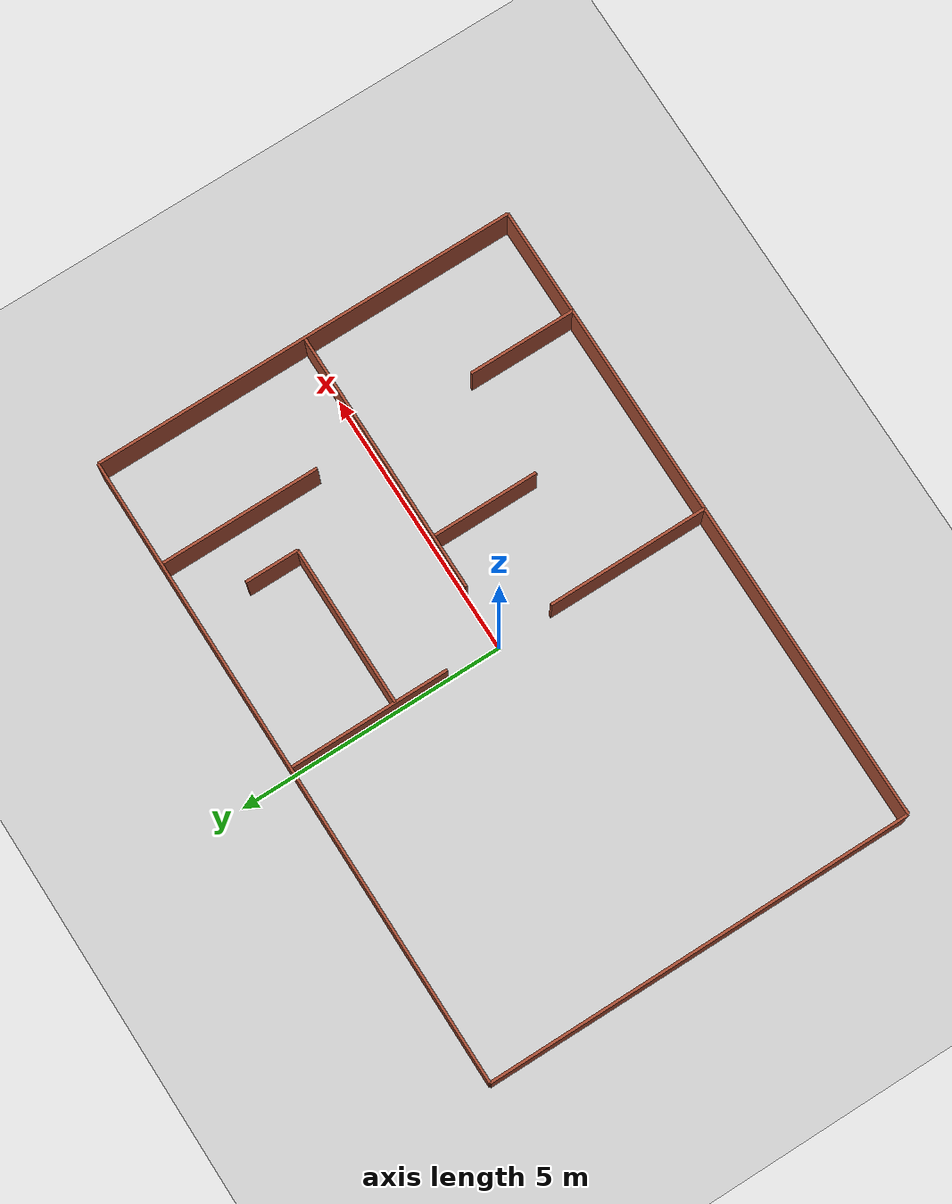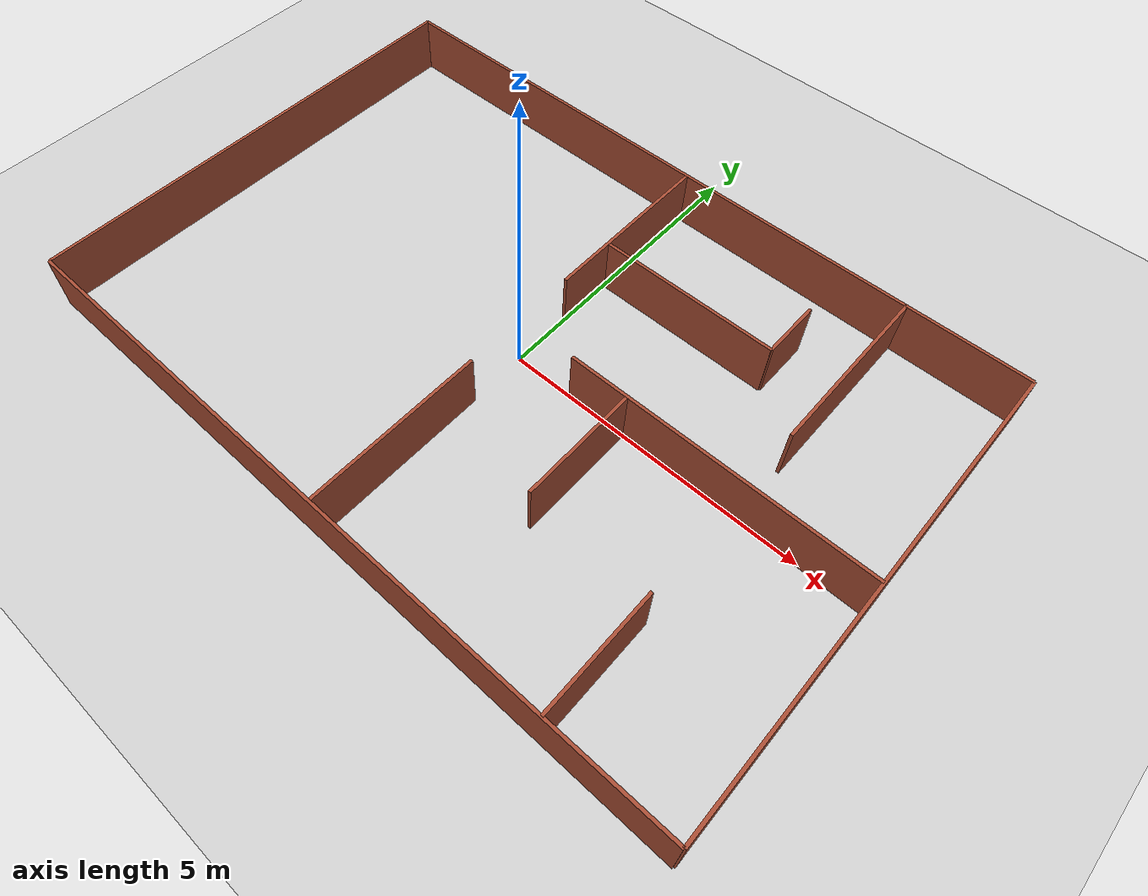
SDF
<sdf version="1.7">
 <world name="warehouse">
  <light name="sun" type="directional">
   <pose>0 0 10 0 -0 0</pose>
   <diffuse>0.8 0.8 0.8 1</diffuse>
   <specular>0.2 0.2 0.2 1</specular>
   <attenuation>
    <range>1000</range>
    <constant>0.9</constant>
    <linear>0.01</linear>
    <quadratic>0.001</quadratic>
   </attenuation>
   <direction>-0.5 0.1 -0.9</direction>
   <spot><inner_angle>0</inner_angle><outer_angle>0</outer_angle><falloff>0</falloff></spot>
  </light>
  <model name="ground_plane">
   <static>1</static>
   <link name="link">
    <collision name="collision">
     <geometry><plane><normal>0 0 1</normal><size>100 100</size></plane></geometry>
     <surface>
      <contact><collide_bitmask>65535</collide_bitmask></contact>
      <friction><ode><mu>100</mu><mu2>50</mu2></ode></friction>
     </surface>
    </collision>
    <visual name="visual">
     <cast_shadows>0</cast_shadows>
     <geometry><plane><normal>0 0 1</normal><size>100 100</size></plane></geometry>
     <material>
      <script><uri>file://media/materials/scripts/gazebo.material</uri><name>Gazebo/Grey</name></script>
     </material>
    </visual>
   </link>
  </model>
  <model name="wall_1">
   <static>1</static>
   <pose>-6 0 0.5 0 -0 0</pose>
   <link name="link">
    <collision name="visual"><geometry><box><size>0.05 8 1</size></box></geometry></collision>
    <visual name="visual">
     <geometry><box><size>0.05 8 1</size></box></geometry>
     <material>
      <script><uri>file://media/materials/scripts/gazebo.material</uri><name>Gazebo/Bricks</name></script>
      <ambient>1 1 1 1</ambient>
     </material>
    </visual>
   </link>
  </model>
  <model name="wall_2">
   <static>1</static>
   <pose>6 0 0.5 0 -0 0</pose>
   <link name="link">
    <collision name="visual"><geometry><box><size>0.05 8 1</size></box></geometry></collision>
    <visual name="visual">
     <geometry><box><size>0.05 8 1</size></box></geometry>
     <material>
      <script><uri>file://media/materials/scripts/gazebo.material</uri><name>Gazebo/Bricks</name></script>
      <ambient>1 1 1 1</ambient>
     </material>
    </visual>
   </link>
  </model>
  <model name="wall_3">
   <static>1</static>
   <pose>0 -4 0.5 0 -0 0</pose>
   <link name="link">
    <collision name="visual"><geometry><box><size>12 0.05 1</size></box></geometry></collision>
    <visual name="visual">
     <geometry><box><size>12 0.05 1</size></box></geometry>
     <material>
      <script><uri>file://media/materials/scripts/gazebo.material</uri><name>Gazebo/Bricks</name></script>
      <ambient>1 1 1 1</ambient>
     </material>
    </visual>
   </link>
  </model>
  <model name="wall_4">
   <static>1</static>
   <pose>0 4 0.5 0 -0 0</pose>
   <link name="link">
    <collision name="visual"><geometry><box><size>12 0.05 1</size></box></geometry></collision>
    <visual name="visual">
     <geometry><box><size>12 0.05 1</size></box></geometry>
     <material>
      <script><uri>file://media/materials/scripts/gazebo.material</uri><name>Gazebo/Bricks</name></script>
      <ambient>1 1 1 1</ambient>
     </material>
    </visual>
   </link>
  </model>
  <model name="wall_5">
   <static>1</static>
   <pose>3.5 0 0.5 0 -0 0</pose>
   <link name="link">
    <collision name="visual"><geometry><box><size>5 0.05 1</size></box></geometry></collision>
    <visual name="visual">
     <geometry><box><size>5 0.05 1</size></box></geometry>
     <material>
      <script><uri>file://media/materials/scripts/gazebo.material</uri><name>Gazebo/Bricks</name></script>
      <ambient>1 1 1 1</ambient>
     </material>
    </visual>
   </link>
  </model>
  <model name="wall_6">
   <static>1</static>
   <pose>0 -2.5 0.5 0 -0 0</pose>
   <link name="link">
    <collision name="visual"><geometry><box><size>0.05 3 1</size></box></geometry></collision>
    <visual name="visual">
     <geometry><box><size>0.05 3 1</size></box></geometry>
     <material>
      <script><uri>file://media/materials/scripts/gazebo.material</uri><name>Gazebo/Bricks</name></script>
      <ambient>1 1 1 1</ambient>
     </material>
    </visual>
   </link>
  </model>
  <model name="wall_7">
   <static>1</static>
   <pose>0 2.5 0.5 0 -0 0</pose>
   <link name="link">
    <collision name="visual"><geometry><box><size>0.05 3 1</size></box></geometry></collision>
    <visual name="visual">
     <geometry><box><size>0.05 3 1</size></box></geometry>
     <material>
      <script><uri>file://media/materials/scripts/gazebo.material</uri><name>Gazebo/Bricks</name></script>
      <ambient>1 1 1 1</ambient>
     </material>
    </visual>
   </link>
  </model>
  <model name="wall_8">
   <static>1</static>
   <pose>2 -1 0.5 0 -0 0</pose>
   <link name="link">
    <collision name="visual"><geometry><box><size>0.05 2 1</size></box></geometry></collision>
    <visual name="visual">
     <geometry><box><size>0.05 2 1</size></box></geometry>
     <material>
      <script><uri>file://media/materials/scripts/gazebo.material</uri><name>Gazebo/Bricks</name></script>
      <ambient>1 1 1 1</ambient>
     </material>
    </visual>
   </link>
  </model>
  <model name="wall_9">
   <static>1</static>
   <pose>4 -3 0.5 0 -0 0</pose>
   <link name="link">
    <collision name="visual"><geometry><box><size>0.05 2 1</size></box></geometry></collision>
    <visual name="visual">
     <geometry><box><size>0.05 2 1</size></box></geometry>
     <material>
      <script><uri>file://media/materials/scripts/gazebo.material</uri><name>Gazebo/Bricks</name></script>
      <ambient>1 1 1 1</ambient>
     </material>
    </visual>
   </link>
  </model>
  <model name="wall_10">
   <static>1</static>
   <pose>1.5 2 0.5 0 -0 0</pose>
   <link name="link">
    <collision name="visual"><geometry><box><size>3 0.05 1</size></box></geometry></collision>
    <visual name="visual">
     <geometry><box><size>3 0.05 1</size></box></geometry>
     <material>
      <script><uri>file://media/materials/scripts/gazebo.material</uri><name>Gazebo/Bricks</name></script>
      <ambient>1 1 1 1</ambient>
     </material>
    </visual>
   </link>
  </model>
  <model name="wall_11">
   <static>1</static>
   <pose>3 2.5 0.5 0 -0 0</pose>
   <link name="link">
    <collision name="visual"><geometry><box><size>0.05 1 1</size></box></geometry></collision>
    <visual name="visual">
     <geometry><box><size>0.05 1 1</size></box></geometry>
     <material>
      <script><uri>file://media/materials/scripts/gazebo.material</uri><name>Gazebo/Bricks</name></script>
      <ambient>1 1 1 1</ambient>
     </material>
    </visual>
   </link>
  </model>
  <model name="wall_12">
   <static>1</static>
   <pose>4 2.5 0.5 0 -0 0</pose>
   <link name="link">
    <collision name="visual"><geometry><box><size>0.05 3 1</size></box></geometry></collision>
    <visual name="visual">
     <geometry><box><size>0.05 3 1</size></box></geometry>
     <material>
      <script><uri>file://media/materials/scripts/gazebo.material</uri><name>Gazebo/Bricks</name></script>
      <ambient>1 1 1 1</ambient>
     </material>
    </visual>
   </link>
  </model>
  <gravity>0 0 -9.8</gravity>
  <magnetic_field>6e-06 2.3e-05 -4.2e-05</magnetic_field>
  <atmosphere type="adiabatic"/>
  <physics type="ode">
   <max_step_size>0.001</max_step_size>
   <real_time_factor>1</real_time_factor>
   <real_time_update_rate>1000</real_time_update_rate>
  </physics>
  <scene><ambient>0.4 0.4 0.4 1</ambient><background>0.7 0.7 0.7 1</background><shadows>1</shadows></scene>
  <spherical_coordinates>
   <surface_model>EARTH_WGS84</surface_model>
   <latitude_deg>0</latitude_deg>
   <longitude_deg>0</longitude_deg>
   <elevation>0</elevation>
   <heading_deg>0</heading_deg>
  </spherical_coordinates>
 </world>
</sdf>
